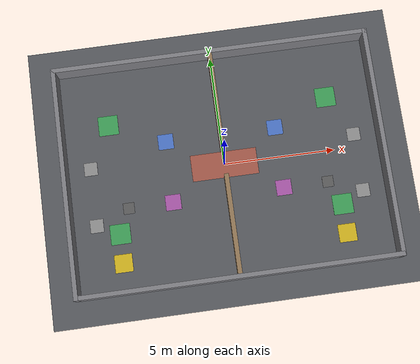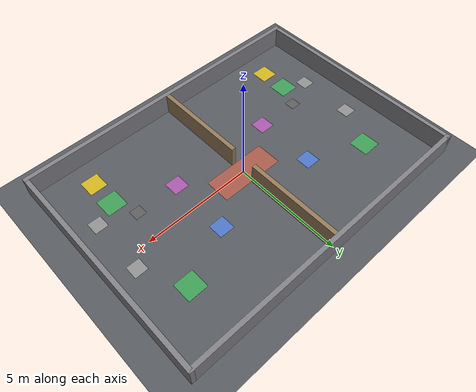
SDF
<?xml version="1.0" ?>
<sdf version="1.10">
  <world name="warehouse">

    <gravity>0 0 -9.8</gravity>

    <physics name="1ms" type="ode">
      <max_step_size>0.001</max_step_size>
      <real_time_factor>1.0</real_time_factor>
      <real_time_update_rate>1000</real_time_update_rate>
    </physics>

    <plugin filename="gz-sim-physics-system" name="gz::sim::systems::Physics"/>
    <plugin filename="gz-sim-scene-broadcaster-system"
            name="gz::sim::systems::SceneBroadcaster"/>
    <plugin filename="gz-sim-contact-system" name="gz::sim::systems::Contact"/>
    <plugin filename="gz-sim-user-commands-system"
            name="gz::sim::systems::UserCommands"/>

    <plugin filename="gz-sim-sensors-system" name="gz::sim::systems::Sensors">
      <render_engine>ogre2</render_engine>
    </plugin>

    <scene>
      <ambient>0.55 0.55 0.58 1</ambient>
      <background>0.70 0.74 0.80 1</background>
      <grid>false</grid>
    </scene>

    <!-- ======================= floor ======================= -->
    <model name="floor">
      <static>true</static>
      <link name="link">
        <collision name="collision">
          <geometry><plane><normal>0 0 1</normal><size>40 40</size></plane></geometry>
          <surface><friction><ode><mu>0.9</mu><mu2>0.9</mu2></ode></friction></surface>
        </collision>
        <visual name="visual">
          <geometry><plane><normal>0 0 1</normal><size>40 40</size></plane></geometry>
          <material><ambient>0.30 0.31 0.33 1</ambient><diffuse>0.34 0.35 0.37 1</diffuse></material>
        </visual>
      </link>
    </model>

    <!-- ======================= outer walls ======================= -->
    <!-- 14 x 10 m enclosure, 0.2 m thick, 1.0 m tall -->
    <model name="wall_north">
      <static>true</static><pose>0 5.1 0.5 0 0 0</pose>
      <link name="link">
        <collision name="c"><geometry><box><size>14.4 0.2 1.0</size></box></geometry></collision>
        <visual name="v"><geometry><box><size>14.4 0.2 1.0</size></box></geometry>
          <material><ambient>0.45 0.45 0.47 1</ambient><diffuse>0.5 0.5 0.52 1</diffuse></material></visual>
      </link>
    </model>
    <model name="wall_south">
      <static>true</static><pose>0 -5.1 0.5 0 0 0</pose>
      <link name="link">
        <collision name="c"><geometry><box><size>14.4 0.2 1.0</size></box></geometry></collision>
        <visual name="v"><geometry><box><size>14.4 0.2 1.0</size></box></geometry>
          <material><ambient>0.45 0.45 0.47 1</ambient><diffuse>0.5 0.5 0.52 1</diffuse></material></visual>
      </link>
    </model>
    <model name="wall_east">
      <static>true</static><pose>7.1 0 0.5 0 0 0</pose>
      <link name="link">
        <collision name="c"><geometry><box><size>0.2 10.4 1.0</size></box></geometry></collision>
        <visual name="v"><geometry><box><size>0.2 10.4 1.0</size></box></geometry>
          <material><ambient>0.45 0.45 0.47 1</ambient><diffuse>0.5 0.5 0.52 1</diffuse></material></visual>
      </link>
    </model>
    <model name="wall_west">
      <static>true</static><pose>-7.1 0 0.5 0 0 0</pose>
      <link name="link">
        <collision name="c"><geometry><box><size>0.2 10.4 1.0</size></box></geometry></collision>
        <visual name="v"><geometry><box><size>0.2 10.4 1.0</size></box></geometry>
          <material><ambient>0.45 0.45 0.47 1</ambient><diffuse>0.5 0.5 0.52 1</diffuse></material></visual>
      </link>
    </model>

    <model name="barrier_north">
      <static>true</static><pose>0 2.8 0.5 0 0 0</pose>
      <link name="link">
        <collision name="c"><geometry><box><size>0.2 4.4 1.0</size></box></geometry></collision>
        <visual name="v"><geometry><box><size>0.2 4.4 1.0</size></box></geometry>
          <material><ambient>0.52 0.42 0.30 1</ambient><diffuse>0.58 0.47 0.34 1</diffuse></material></visual>
      </link>
    </model>
    <model name="barrier_south">
      <static>true</static><pose>0 -2.8 0.5 0 0 0</pose>
      <link name="link">
        <collision name="c"><geometry><box><size>0.2 4.4 1.0</size></box></geometry></collision>
        <visual name="v"><geometry><box><size>0.2 4.4 1.0</size></box></geometry>
          <material><ambient>0.52 0.42 0.30 1</ambient><diffuse>0.58 0.47 0.34 1</diffuse></material></visual>
      </link>
    </model>

    <model name="corridor_marker">
      <static>true</static><pose>0 0 0.006 0 0 0</pose>
      <link name="link">
        <visual name="v"><geometry><box><size>3.0 1.2 0.004</size></box></geometry>
          <material><ambient>0.85 0.35 0.25 0.6</ambient><diffuse>0.90 0.40 0.28 0.6</diffuse></material></visual>
      </link>
    </model>

    <!-- ======================= logical pads ======================= -->
    <!-- stations: (+/-5, +/-2.5) -->
    <model name="pad_S_west_north"><static>true</static><pose>-5.0 2.5 0.004 0 0 0</pose>
      <link name="link"><visual name="v"><geometry><box><size>0.9 0.9 0.004</size></box></geometry>
        <material><ambient>0.20 0.55 0.30 1</ambient><diffuse>0.24 0.62 0.34 1</diffuse></material></visual></link></model>
    <model name="pad_S_west_south"><static>true</static><pose>-5.0 -2.5 0.004 0 0 0</pose>
      <link name="link"><visual name="v"><geometry><box><size>0.9 0.9 0.004</size></box></geometry>
        <material><ambient>0.20 0.55 0.30 1</ambient><diffuse>0.24 0.62 0.34 1</diffuse></material></visual></link></model>
    <model name="pad_S_east_north"><static>true</static><pose>5.0 2.5 0.004 0 0 0</pose>
      <link name="link"><visual name="v"><geometry><box><size>0.9 0.9 0.004</size></box></geometry>
        <material><ambient>0.20 0.55 0.30 1</ambient><diffuse>0.24 0.62 0.34 1</diffuse></material></visual></link></model>
    <model name="pad_S_east_south"><static>true</static><pose>5.0 -2.5 0.004 0 0 0</pose>
      <link name="link"><visual name="v"><geometry><box><size>0.9 0.9 0.004</size></box></geometry>
        <material><ambient>0.20 0.55 0.30 1</ambient><diffuse>0.24 0.62 0.34 1</diffuse></material></visual></link></model>

    <!-- chargers: (+/-5, -3.8) -->
    <model name="pad_C_west"><static>true</static><pose>-5.0 -3.8 0.004 0 0 0</pose>
      <link name="link"><visual name="v"><geometry><box><size>0.8 0.8 0.004</size></box></geometry>
        <material><ambient>0.75 0.65 0.10 1</ambient><diffuse>0.82 0.70 0.12 1</diffuse></material></visual></link></model>
    <model name="pad_C_east"><static>true</static><pose>5.0 -3.8 0.004 0 0 0</pose>
      <link name="link"><visual name="v"><geometry><box><size>0.8 0.8 0.004</size></box></geometry>
        <material><ambient>0.75 0.65 0.10 1</ambient><diffuse>0.82 0.70 0.12 1</diffuse></material></visual></link></model>

    <!-- waiting slots: (+/-2.5, +1.4) -->
    <model name="pad_wait_west"><static>true</static><pose>-2.5 1.4 0.004 0 0 0</pose>
      <link name="link"><visual name="v"><geometry><box><size>0.7 0.7 0.004</size></box></geometry>
        <material><ambient>0.25 0.40 0.70 1</ambient><diffuse>0.30 0.46 0.78 1</diffuse></material></visual></link></model>
    <model name="pad_wait_east"><static>true</static><pose>2.5 1.4 0.004 0 0 0</pose>
      <link name="link"><visual name="v"><geometry><box><size>0.7 0.7 0.004</size></box></geometry>
        <material><ambient>0.25 0.40 0.70 1</ambient><diffuse>0.30 0.46 0.78 1</diffuse></material></visual></link></model>

    <!-- exit buffers: (+/-2.5, -1.4) -->
    <model name="pad_exit_west"><static>true</static><pose>-2.5 -1.4 0.004 0 0 0</pose>
      <link name="link"><visual name="v"><geometry><box><size>0.7 0.7 0.004</size></box></geometry>
        <material><ambient>0.60 0.30 0.60 1</ambient><diffuse>0.66 0.34 0.66 1</diffuse></material></visual></link></model>
    <model name="pad_exit_east"><static>true</static><pose>2.5 -1.4 0.004 0 0 0</pose>
      <link name="link"><visual name="v"><geometry><box><size>0.7 0.7 0.004</size></box></geometry>
        <material><ambient>0.60 0.30 0.60 1</ambient><diffuse>0.66 0.34 0.66 1</diffuse></material></visual></link></model>

    <model name="pad_release_west"><static>true</static><pose>-4.5 -1.4 0.004 0 0 0</pose>
      <link name="link"><visual name="v"><geometry><box><size>0.5 0.5 0.004</size></box></geometry>
        <material><ambient>0.30 0.30 0.30 1</ambient><diffuse>0.36 0.36 0.36 1</diffuse></material></visual></link></model>
    <model name="pad_release_east"><static>true</static><pose>4.5 -1.4 0.004 0 0 0</pose>
      <link name="link"><visual name="v"><geometry><box><size>0.5 0.5 0.004</size></box></geometry>
        <material><ambient>0.30 0.30 0.30 1</ambient><diffuse>0.36 0.36 0.36 1</diffuse></material></visual></link></model>

    <model name="pad_spawn_west"><static>true</static><pose>-6.0 -2.0 0.004 0 0 0</pose>
      <link name="link"><visual name="v"><geometry><box><size>0.6 0.6 0.004</size></box></geometry>
        <material><ambient>0.50 0.50 0.50 1</ambient><diffuse>0.56 0.56 0.56 1</diffuse></material></visual></link></model>
    <model name="pad_spawn_east"><static>true</static><pose>6.0 -2.0 0.004 0 0 0</pose>
      <link name="link"><visual name="v"><geometry><box><size>0.6 0.6 0.004</size></box></geometry>
        <material><ambient>0.50 0.50 0.50 1</ambient><diffuse>0.56 0.56 0.56 1</diffuse></material></visual></link></model>
    <model name="pad_spawn_west2"><static>true</static><pose>-6.0 0.6 0.004 0 0 0</pose>
      <link name="link"><visual name="v"><geometry><box><size>0.6 0.6 0.004</size></box></geometry>
        <material><ambient>0.50 0.50 0.50 1</ambient><diffuse>0.56 0.56 0.56 1</diffuse></material></visual></link></model>
    <model name="pad_spawn_east2"><static>true</static><pose>6.0 0.6 0.004 0 0 0</pose>
      <link name="link"><visual name="v"><geometry><box><size>0.6 0.6 0.004</size></box></geometry>
        <material><ambient>0.50 0.50 0.50 1</ambient><diffuse>0.56 0.56 0.56 1</diffuse></material></visual></link></model>

  </world>
</sdf>
